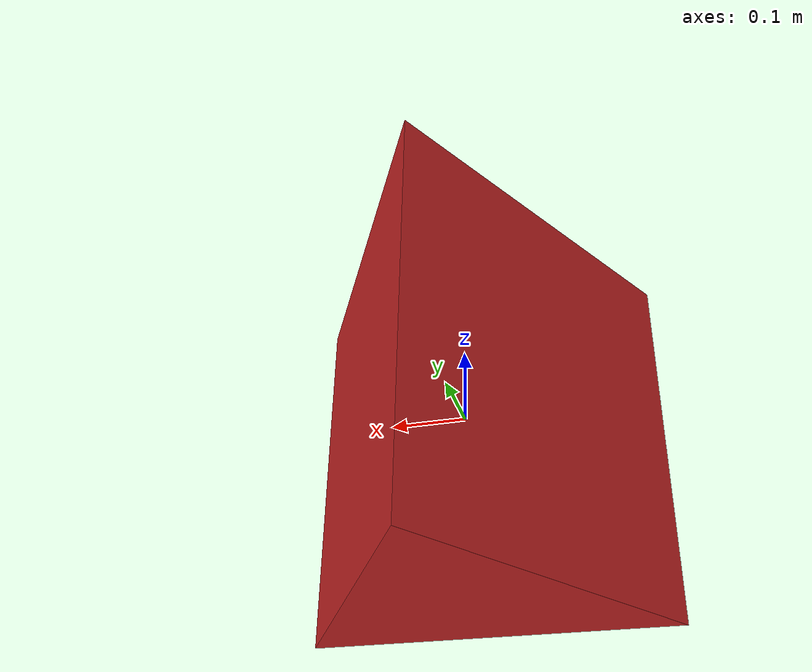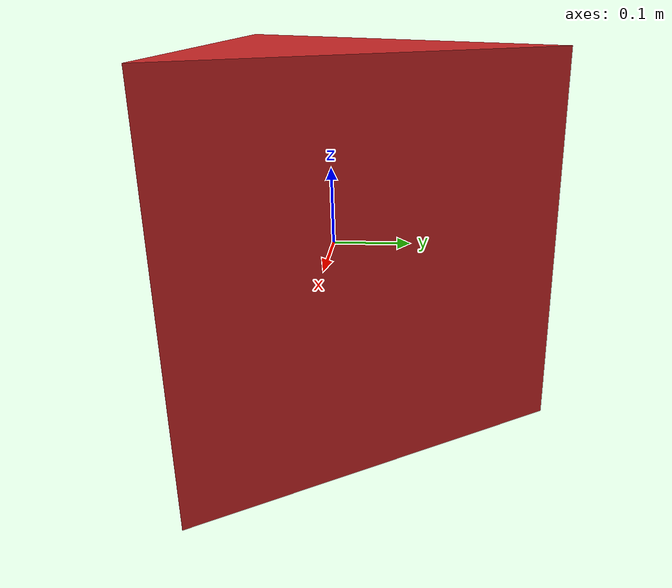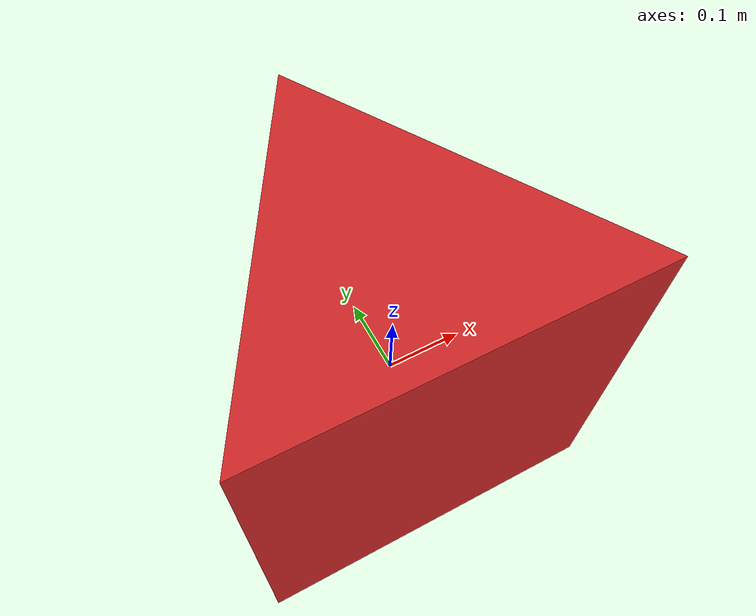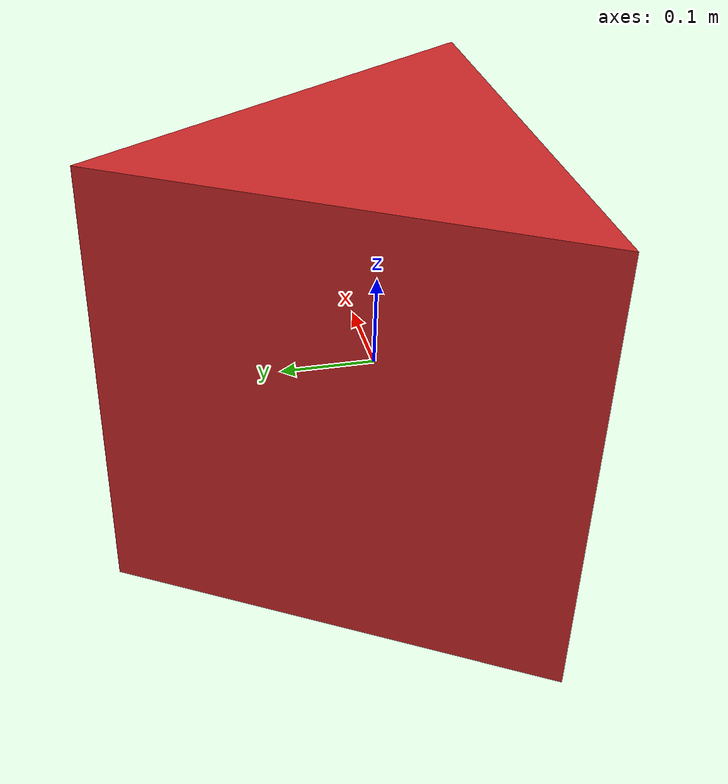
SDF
<?xml version='1.0'?>
<sdf version='1.6'>
  <model name='Prism'>
    <link name='base_link'>
      <inertial>
        <pose>0 0 0 0 -0 0</pose>
        <mass>0.1</mass>
        <inertia>
          <ixx>0.0083</ixx>
          <ixy>0</ixy>
          <ixz>0</ixz>
          <iyy>0.0083</iyy>
          <iyz>0</iyz>
          <izz>0.0083</izz>
        </inertia>
      </inertial>
      <self_collide>0</self_collide>
      <enable_wind>0</enable_wind>
      <kinematic>0</kinematic>
      <pose>0 0 0 0 -0 0</pose>
      <gravity>1</gravity>
      <visual name='base_link_visual'>
        <pose>0 0 0 0 -0 0</pose>
        <geometry>
          <mesh>
            <scale>1 1 5</scale>
            <uri>/home/firefly/chh_ws/src/plan_cdpr/worlds/models/payload/meshes/base_link.STL</uri>
          </mesh>
        </geometry>
        <material>
          <shader type='pixel'>
            <normal_map>__default__</normal_map>
          </shader>
          <script>
            <name>Gazebo/Red</name>
            <uri>file://media/materials/scripts/gazebo.material</uri>
          </script>
          <ambient>1 0 0 1</ambient>
          <diffuse>1 0 0 1</diffuse>
          <specular>0.1 0.1 0.1 1</specular>
          <emissive>0 0 0 1</emissive>
        </material>
        <transparency>0</transparency>
        <cast_shadows>1</cast_shadows>
      </visual>
      <collision name='base_link_collision'>
        <laser_retro>0</laser_retro>
        <max_contacts>10</max_contacts>
        <pose>0 0 0 0 -0 0</pose>
        <geometry>
          <mesh>
            <uri>/home/firefly/chh_ws/src/plan_cdpr/worlds/models/payload/meshes/base_link.STL</uri>
            <scale>1 1 5</scale>
          </mesh>
        </geometry>
        <surface>
          <friction>
            <ode>
              <mu>1</mu>
              <mu2>1</mu2>
              <fdir1>0 0 0</fdir1>
              <slip1>0</slip1>
              <slip2>0</slip2>
            </ode>
            <torsional>
              <coefficient>1</coefficient>
              <patch_radius>0</patch_radius>
              <surface_radius>0</surface_radius>
              <use_patch_radius>1</use_patch_radius>
              <ode>
                <slip>0</slip>
              </ode>
            </torsional>
          </friction>
          <bounce>
            <restitution_coefficient>0</restitution_coefficient>
            <threshold>1e+06</threshold>
          </bounce>
          <contact>
            <collide_without_contact>0</collide_without_contact>
            <collide_without_contact_bitmask>1</collide_without_contact_bitmask>
            <collide_bitmask>1</collide_bitmask>
            <ode>
              <soft_cfm>0</soft_cfm>
              <soft_erp>0.2</soft_erp>
              <kp>1e+13</kp>
              <kd>1</kd>
              <max_vel>0.01</max_vel>
              <min_depth>0</min_depth>
            </ode>
            <bullet>
              <split_impulse>1</split_impulse>
              <split_impulse_penetration_threshold>-0.01</split_impulse_penetration_threshold>
              <soft_cfm>0</soft_cfm>
              <soft_erp>0.2</soft_erp>
              <kp>1e+13</kp>
              <kd>1</kd>
            </bullet>
          </contact>
        </surface>
      </collision>
    </link>
    <static>0</static>
    <allow_auto_disable>1</allow_auto_disable>
  </model>
</sdf>
